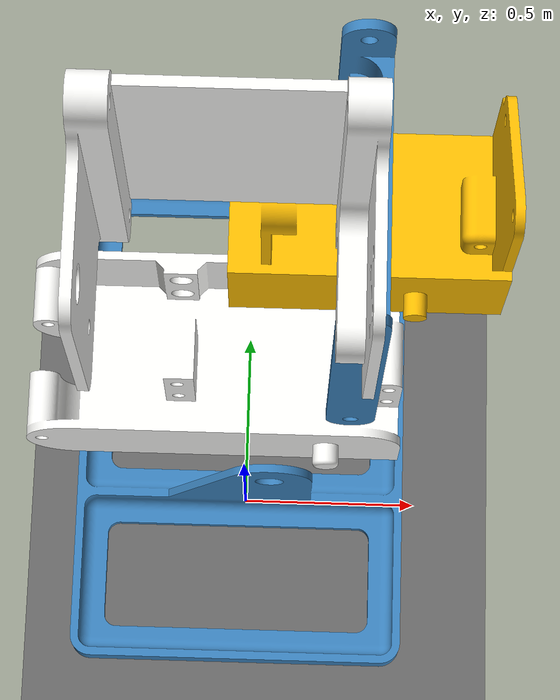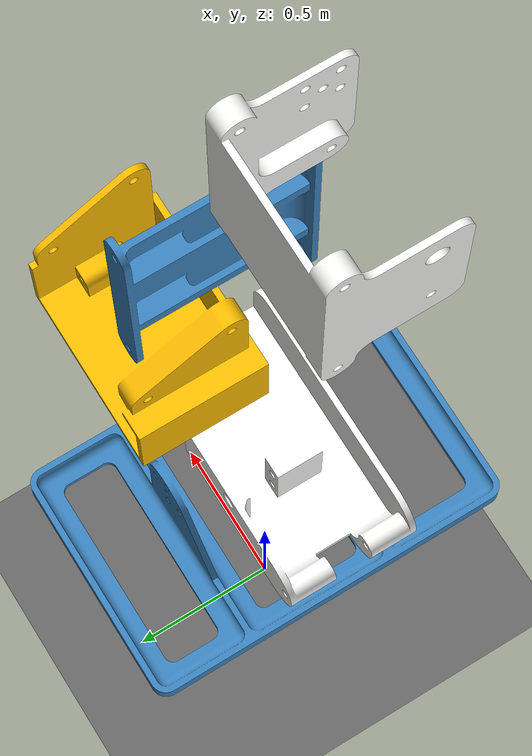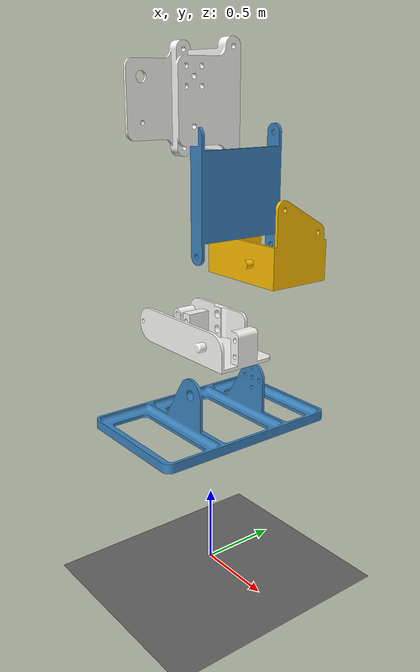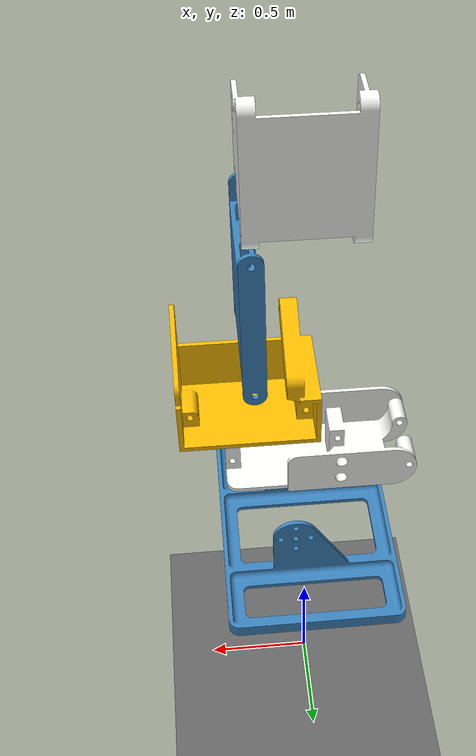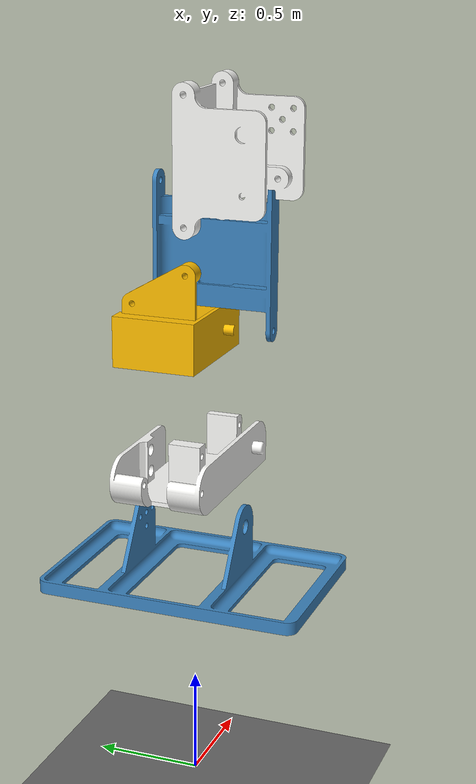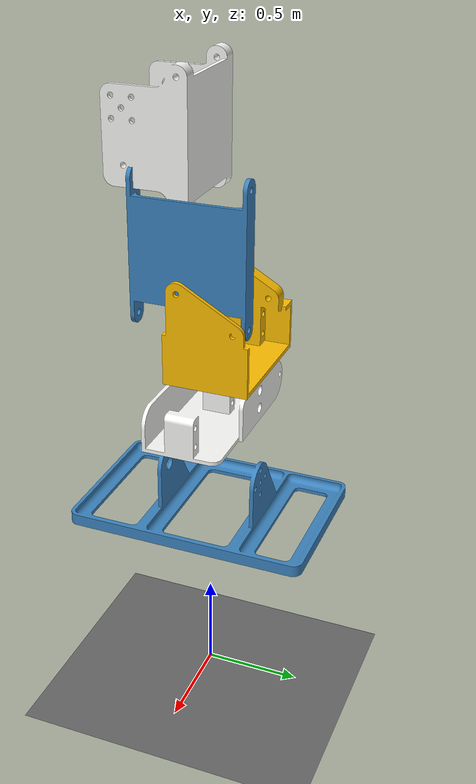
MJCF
<mujoco model="hello">
  <option gravity="0 0 -9.81"/>

<default>
  <mesh scale="0.01 0.01 0.01"/>
  <geom type="mesh" solref="0.005 1"/>
</default>

  <asset>
    <material name="blue" rgba="0.23 0.51 0.74 1"/>
    <material name="yellow" rgba="0.99 0.74 0.0 1"/>
    <material name="white" rgba="0.98 0.98 0.97 1"/>
    <mesh name="1R_foot" file="../STL/1R_foot-Body.stl"/>
    <mesh name="2R_footJoint" file="../STL/2R_footJoint_bearing-Body.stl"/>
    <mesh name="3BR_calf" file="../STL/3BR_calf-Body.stl"/>
    <mesh name="3FU_shin" file="../STL/3FU_shin-Body.stl"/>
    <mesh name="4R_knee" file="../STL/4R_knee-Body.stl"/>
  </asset>

  <worldbody>
    <!-- light pos="0 0 1" dir="0 0 -1" diffuse="0.1 0.8 0.8"/-->
    <light directional="true" pos="-0.5 0.5 3" dir="0 0 -1" />
    <!-- geom name="floor" size="1 1 0.05" rgba="1.0 0.0 0.0 1.0" type="plane"/-->
    <geom name="floor" pos="0 0 -0.1" size="0 0 0.1" type="plane" rgba="0.4 0.4 0.4 1.0"/>
    <body pos="0 0 1" euler= "0 0 0">
        <joint type="free"/>
        <inertial pos="0 0 0.1" mass="0.10" diaginertia="0.005 0.005 0.005"/>
        <geom mesh="1R_foot" type="mesh" material="blue"/>
    </body>

    <body pos="0 0 2" euler= "0 0 0">
        <joint type="free"/>
        <inertial pos="0 0 0.1" mass="0.05" diaginertia="0.005 0.005 0.005"/>
        <geom mesh="2R_footJoint" type="mesh" material="yellow"/>
    </body>

    <body pos="0 0.0 1.5" euler= "0 0 0">
        <joint type="free"/>
        <inertial pos="0 0 0.1" mass="0.10" diaginertia="0.005 0.005 0.005"/>
        <geom mesh="3BR_calf" type="mesh" material="white"/>
    </body>

    <body pos="0 0 2.5" euler= "0 0 0">
        <joint type="free"/>
        <inertial pos="0 0 0.1" mass="0.05" diaginertia="0.005 0.005 0.005"/>
        <geom mesh="3FU_shin" type="mesh" material="blue"/>
    </body>

    <body pos="0 0 3.0" euler= "0 0 0">
        <joint type="free"/>
        <inertial pos="0 0 0.1" mass="0.05" diaginertia="0.005 0.005 0.005"/>
        <geom mesh="4R_knee" type="mesh" material="white"/>
    </body>

  </worldbody>

</mujoco>
